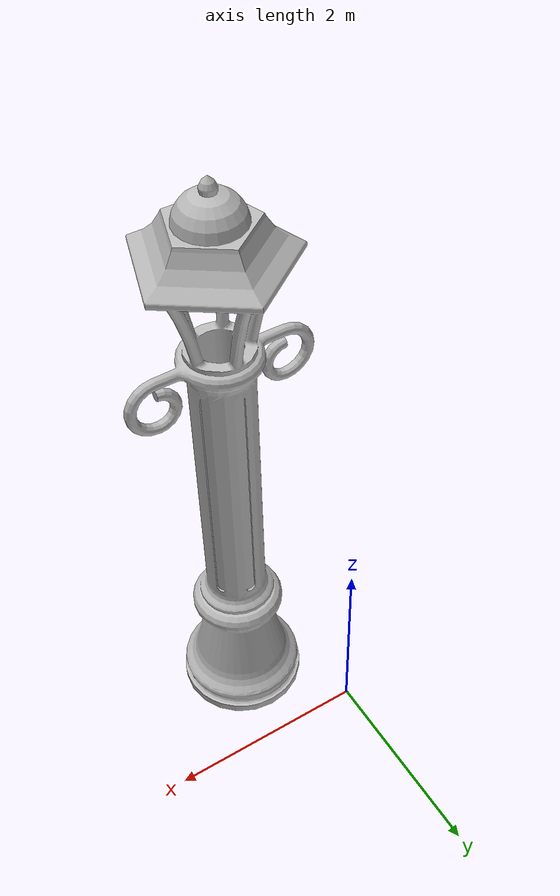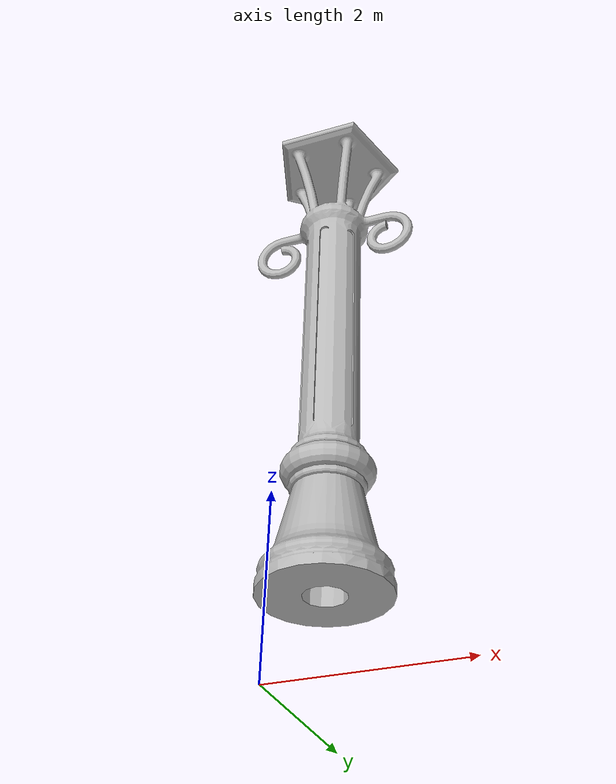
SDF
<?xml version="1.0"?>
<sdf version="1.6">
  <model name="my_model">
    <link name="link">
      <visual name="visual">
        <geometry>
          <mesh>
            <uri>model://worlds/stll/lamp.stl</uri>
            <scale>0.05 0.05 0.05</scale> <!-- Масштабирование -->
          </mesh>
        </geometry>
      </visual>
      <collision name="collision">
        <geometry>
          <mesh>
            <uri>model://worlds/stll/lamp.stl</uri>
            <scale>0.05 0.05 0.05</scale>
          </mesh>
        </geometry>
      </collision>
    </link>
    <pose>0 0 0 1.57 0 0</pose> <!-- Позиция и ориентация -->
  </model>
</sdf>
